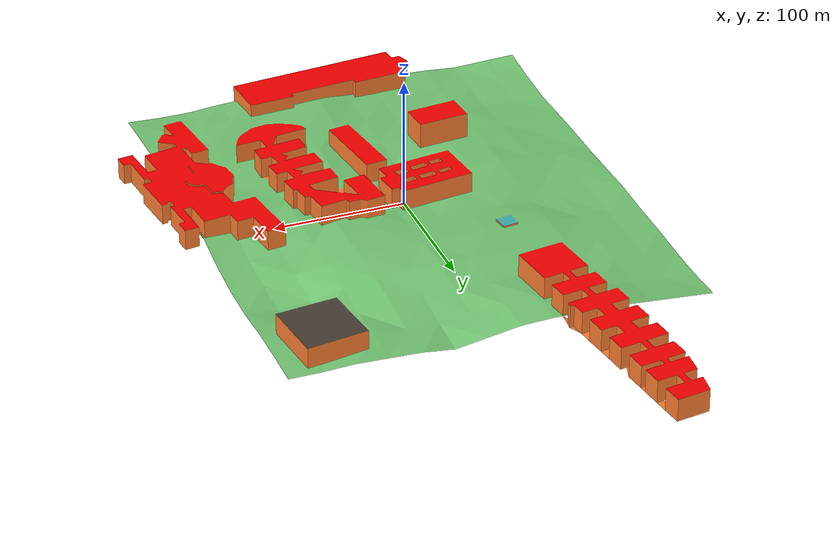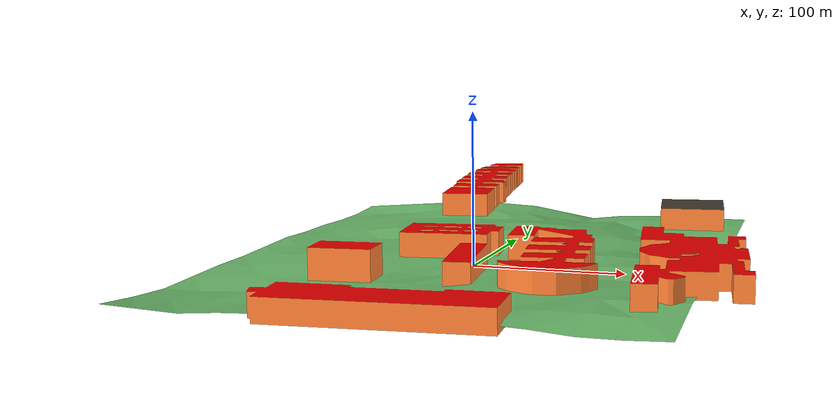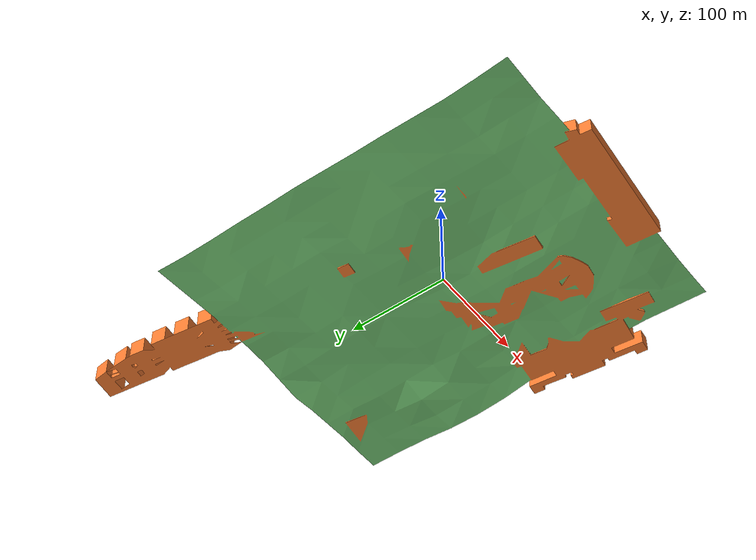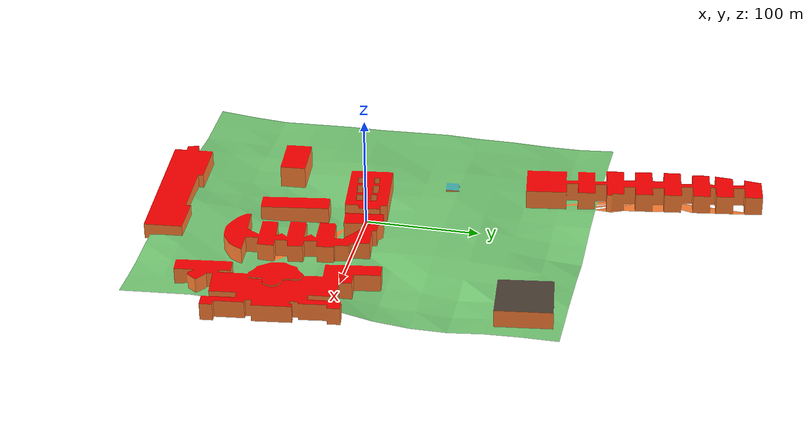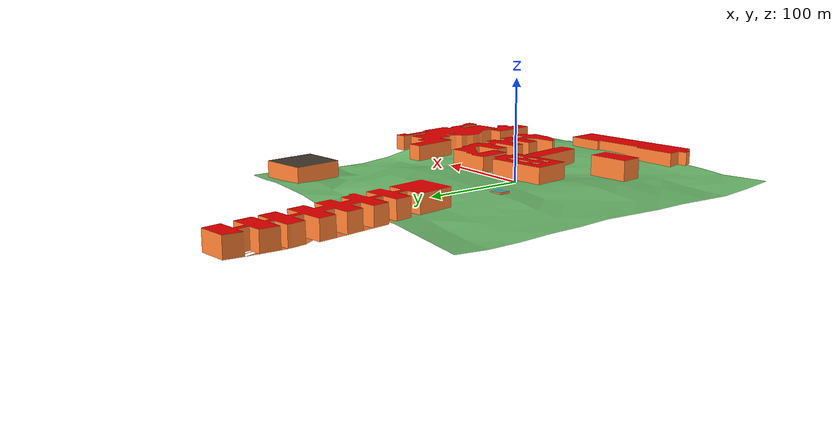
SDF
<?xml version='1.0'?>
<sdf version="1.7">
  <model name="albacete_city">
    <pose>0 0 0 0 0 0 </pose>
  	<static>true</static>
    <link name="albacete_link">
        <collision name="albacete_collision">
        	<pose>0 0 0 0 0 0</pose>
            <geometry>
                <mesh>
                	<uri>albacete.dae</uri>
                </mesh>
                <scale>1 1 1</scale>
            </geometry>
            <surface>
            	<friction>
            		<ode>
            			<mu>0.001</mu>
            			<mu2>0.001</mu2>
            		</ode>
            	</friction>
            </surface>
        </collision>
        <visual name="albacete_visual">
            <geometry>
                <mesh>
                	<uri>albacete.dae</uri>
                </mesh>
                <scale>1 1 1</scale>
            </geometry>
        </visual>
    </link>
    </model>
</sdf>
